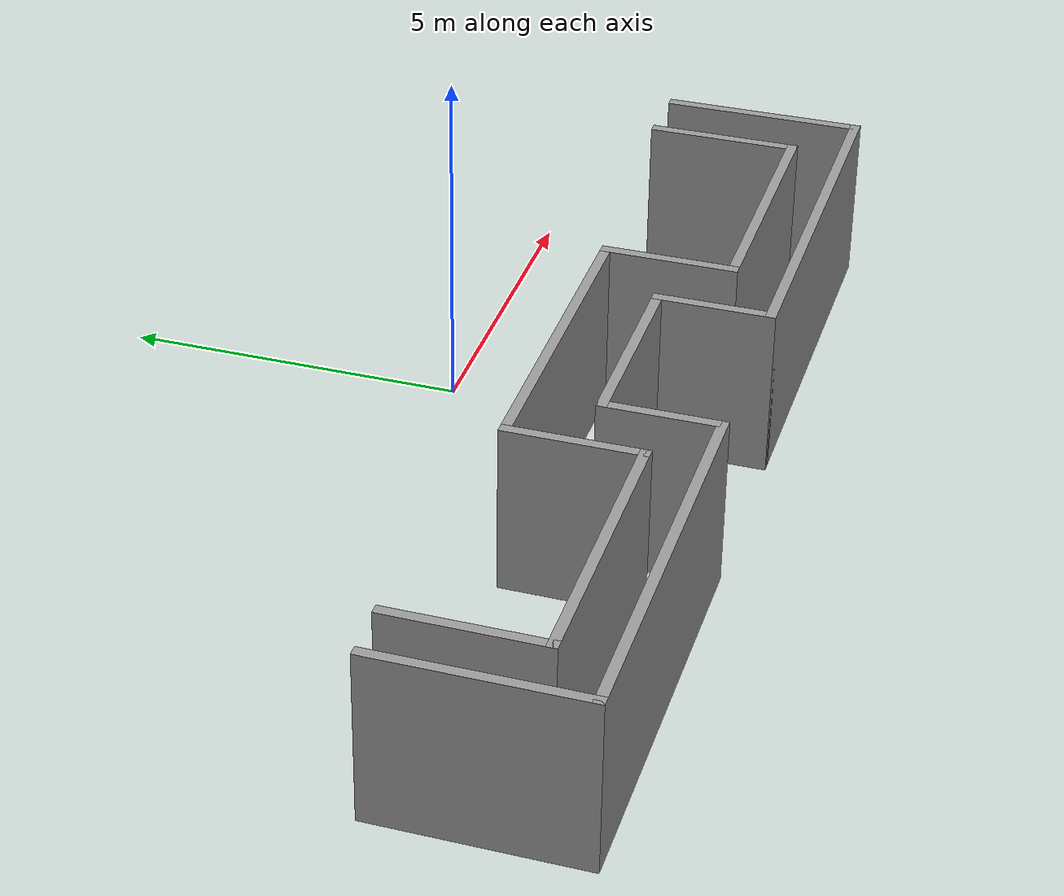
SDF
<?xml version='1.0'?>
<sdf version='1.7'>
  <model name='mbs_room'>
    <pose>-1.94 -2.41097 0 0 -0 0</pose>
    <link name='Wall_100'>
      <collision name='Wall_100_Collision'>
        <geometry>
          <box>
            <size>3 0.15 2.5</size>
          </box>
        </geometry>
        <pose>0 0 1.25 0 -0 0</pose>
      </collision>
      <visual name='Wall_100_Visual'>
        <pose>0 0 1.25 0 -0 0</pose>
        <geometry>
          <box>
            <size>3 0.15 2.5</size>
          </box>
        </geometry>
        <material>
          <script>
            <uri>file://media/materials/scripts/gazebo.material</uri>
            <name>Gazebo/Grey</name>
          </script>
          <ambient>1 1 1 1</ambient>
        </material>
        <meta>
          <layer>0</layer>
        </meta>
      </visual>
      <pose>0 -0.735966 0 0 -0 0</pose>
    </link>
    <link name='Wall_101'>
      <collision name='Wall_101_Collision'>
        <geometry>
          <box>
            <size>1.75 0.15 2.5</size>
          </box>
        </geometry>
        <pose>0 0 1.25 0 -0 0</pose>
      </collision>
      <visual name='Wall_101_Visual'>
        <pose>0 0 1.25 0 -0 0</pose>
        <geometry>
          <box>
            <size>1.75 0.15 2.5</size>
          </box>
        </geometry>
        <material>
          <script>
            <uri>file://media/materials/scripts/gazebo.material</uri>
            <name>Gazebo/Grey</name>
          </script>
          <ambient>1 1 1 1</ambient>
        </material>
        <meta>
          <layer>0</layer>
        </meta>
      </visual>
      <pose>1.425 -1.53597 0 0 -0 -1.5708</pose>
    </link>
    <link name='Wall_102'>
      <collision name='Wall_102_Collision'>
        <geometry>
          <box>
            <size>6 0.15 2.5</size>
          </box>
        </geometry>
        <pose>0 0 1.25 0 -0 0</pose>
      </collision>
      <visual name='Wall_102_Visual'>
        <pose>0 0 1.25 0 -0 0</pose>
        <geometry>
          <box>
            <size>6 0.15 2.5</size>
          </box>
        </geometry>
        <material>
          <script>
            <uri>file://media/materials/scripts/gazebo.material</uri>
            <name>Gazebo/Grey</name>
          </script>
          <ambient>1 1 1 1</ambient>
        </material>
        <meta>
          <layer>0</layer>
        </meta>
      </visual>
      <pose>4.35 -2.33597 0 0 -0 0</pose>
    </link>
    <link name='Wall_103'>
      <collision name='Wall_103_Collision'>
        <geometry>
          <box>
            <size>3 0.15 2.5</size>
          </box>
        </geometry>
        <pose>0 0 1.25 0 -0 0</pose>
      </collision>
      <visual name='Wall_103_Visual'>
        <pose>0 0 1.25 0 -0 0</pose>
        <geometry>
          <box>
            <size>3 0.15 2.5</size>
          </box>
        </geometry>
        <material>
          <script>
            <uri>file://media/materials/scripts/gazebo.material</uri>
            <name>Gazebo/Grey</name>
          </script>
          <ambient>1 1 1 1</ambient>
        </material>
        <meta>
          <layer>0</layer>
        </meta>
      </visual>
      <pose>7.275 -0.910966 0 0 -0 1.5708</pose>
    </link>
    <link name='Wall_105'>
      <collision name='Wall_105_Collision'>
        <geometry>
          <box>
            <size>2.25 0.15 2.5</size>
          </box>
        </geometry>
        <pose>0 0 1.25 0 -0 0</pose>
      </collision>
      <visual name='Wall_105_Visual'>
        <pose>0 0 1.25 0 -0 0</pose>
        <geometry>
          <box>
            <size>2.25 0.15 2.5</size>
          </box>
        </geometry>
        <material>
          <script>
            <uri>file://media/materials/scripts/gazebo.material</uri>
            <name>Gazebo/Grey</name>
          </script>
          <ambient>1 1 1 1</ambient>
        </material>
        <meta>
          <layer>0</layer>
        </meta>
      </visual>
      <pose>-6.465 -0.505966 0 0 -0 -1.5708</pose>
    </link>
    <link name='Wall_106'>
      <collision name='Wall_106_Collision'>
        <geometry>
          <box>
            <size>4.25 0.15 2.5</size>
          </box>
        </geometry>
        <pose>0 0 1.25 0 -0 0</pose>
      </collision>
      <visual name='Wall_106_Visual'>
        <pose>0 0 1.25 0 -0 0</pose>
        <geometry>
          <box>
            <size>4.25 0.15 2.5</size>
          </box>
        </geometry>
        <material>
          <script>
            <uri>file://media/materials/scripts/gazebo.material</uri>
            <name>Gazebo/Grey</name>
          </script>
          <ambient>1 1 1 1</ambient>
        </material>
        <meta>
          <layer>0</layer>
        </meta>
      </visual>
      <pose>-4.415 -1.55597 0 0 -0 0</pose>
    </link>
    <link name='Wall_107'>
      <collision name='Wall_107_Collision'>
        <geometry>
          <box>
            <size>2 0.15 2.5</size>
          </box>
        </geometry>
        <pose>0 0 1.25 0 -0 0</pose>
      </collision>
      <visual name='Wall_107_Visual'>
        <pose>0 0 1.25 0 -0 0</pose>
        <geometry>
          <box>
            <size>2 0.15 2.5</size>
          </box>
        </geometry>
        <material>
          <script>
            <uri>file://media/materials/scripts/gazebo.material</uri>
            <name>Gazebo/Grey</name>
          </script>
          <ambient>1 1 1 1</ambient>
        </material>
        <meta>
          <layer>0</layer>
        </meta>
      </visual>
      <pose>-2.365 -0.630966 0 0 -0 1.5708</pose>
    </link>
    <link name='Wall_108'>
      <collision name='Wall_108_Collision'>
        <geometry>
          <box>
            <size>5 0.15 2.5</size>
          </box>
        </geometry>
        <pose>0 0 1.25 0 -0 0</pose>
      </collision>
      <visual name='Wall_108_Visual'>
        <pose>0 0 1.25 0 -0 0</pose>
        <geometry>
          <box>
            <size>5 0.15 2.5</size>
          </box>
        </geometry>
        <material>
          <script>
            <uri>file://media/materials/scripts/gazebo.material</uri>
            <name>Gazebo/Grey</name>
          </script>
          <ambient>1 1 1 1</ambient>
        </material>
        <meta>
          <layer>0</layer>
        </meta>
      </visual>
      <pose>0.06 0.294034 0 0 -0 0</pose>
    </link>
    <link name='Wall_109'>
      <collision name='Wall_109_Collision'>
        <geometry>
          <box>
            <size>2 0.15 2.5</size>
          </box>
        </geometry>
        <pose>0 0 1.25 0 -0 0</pose>
      </collision>
      <visual name='Wall_109_Visual'>
        <pose>0 0 1.25 0 -0 0</pose>
        <geometry>
          <box>
            <size>2 0.15 2.5</size>
          </box>
        </geometry>
        <material>
          <script>
            <uri>file://media/materials/scripts/gazebo.material</uri>
            <name>Gazebo/Grey</name>
          </script>
          <ambient>1 1 1 1</ambient>
        </material>
        <meta>
          <layer>0</layer>
        </meta>
      </visual>
      <pose>2.485 -0.630966 0 0 -0 -1.5708</pose>
    </link>
    <link name='Wall_110'>
      <collision name='Wall_110_Collision'>
        <geometry>
          <box>
            <size>4 0.15 2.5</size>
          </box>
        </geometry>
        <pose>0 0 1.25 0 -0 0</pose>
      </collision>
      <visual name='Wall_110_Visual'>
        <pose>0 0 1.25 0 -0 0</pose>
        <geometry>
          <box>
            <size>4 0.15 2.5</size>
          </box>
        </geometry>
        <material>
          <script>
            <uri>file://media/materials/scripts/gazebo.material</uri>
            <name>Gazebo/Grey</name>
          </script>
          <ambient>1 1 1 1</ambient>
        </material>
        <meta>
          <layer>0</layer>
        </meta>
      </visual>
      <pose>4.41 -1.55597 0 0 -0 0</pose>
    </link>
    <link name='Wall_111'>
      <collision name='Wall_111_Collision'>
        <geometry>
          <box>
            <size>2.25 0.15 2.5</size>
          </box>
        </geometry>
        <pose>0 0 1.25 0 -0 0</pose>
      </collision>
      <visual name='Wall_111_Visual'>
        <pose>0 0 1.25 0 -0 0</pose>
        <geometry>
          <box>
            <size>2.25 0.15 2.5</size>
          </box>
        </geometry>
        <material>
          <script>
            <uri>file://media/materials/scripts/gazebo.material</uri>
            <name>Gazebo/Grey</name>
          </script>
          <ambient>1 1 1 1</ambient>
        </material>
        <meta>
          <layer>0</layer>
        </meta>
      </visual>
      <pose>6.335 -0.505966 0 0 -0 1.5708</pose>
    </link>
    <link name='Wall_95'>
      <collision name='Wall_95_Collision'>
        <geometry>
          <box>
            <size>3 0.15 2.5</size>
          </box>
        </geometry>
        <pose>0 0 1.25 0 -0 0</pose>
      </collision>
      <visual name='Wall_95_Visual'>
        <pose>0 0 1.25 0 -0 0</pose>
        <geometry>
          <box>
            <size>3 0.15 2.5</size>
          </box>
        </geometry>
        <material>
          <script>
            <uri>file://media/materials/scripts/gazebo.material</uri>
            <name>Gazebo/Grey</name>
          </script>
          <ambient>1 1 1 1</ambient>
        </material>
        <meta>
          <layer>0</layer>
        </meta>
      </visual>
      <pose>-7.275 -0.910966 0 0 -0 -1.5708</pose>
    </link>
    <link name='Wall_96'>
      <collision name='Wall_96_Collision'>
        <geometry>
          <box>
            <size>6 0.15 2.5</size>
          </box>
        </geometry>
        <pose>0 0 1.25 0 -0 0</pose>
      </collision>
      <visual name='Wall_96_Visual'>
        <pose>0 0 1.25 0 -0 0</pose>
        <geometry>
          <box>
            <size>6 0.15 2.5</size>
          </box>
        </geometry>
        <material>
          <script>
            <uri>file://media/materials/scripts/gazebo.material</uri>
            <name>Gazebo/Grey</name>
          </script>
          <ambient>1 1 1 1</ambient>
        </material>
        <meta>
          <layer>0</layer>
        </meta>
      </visual>
      <pose>-4.35 -2.33597 0 0 -0 0</pose>
    </link>
    <link name='Wall_97'>
      <collision name='Wall_97_Collision'>
        <geometry>
          <box>
            <size>1.75 0.15 2.5</size>
          </box>
        </geometry>
        <pose>0 0 1.25 0 -0 0</pose>
      </collision>
      <visual name='Wall_97_Visual'>
        <pose>0 0 1.25 0 -0 0</pose>
        <geometry>
          <box>
            <size>1.75 0.15 2.5</size>
          </box>
        </geometry>
        <material>
          <script>
            <uri>file://media/materials/scripts/gazebo.material</uri>
            <name>Gazebo/Grey</name>
          </script>
          <ambient>1 1 1 1</ambient>
        </material>
        <meta>
          <layer>0</layer>
        </meta>
      </visual>
      <pose>-1.425 -1.53597 0 0 -0 1.5708</pose>
    </link>
    <static>1</static>
  </model>
</sdf>
